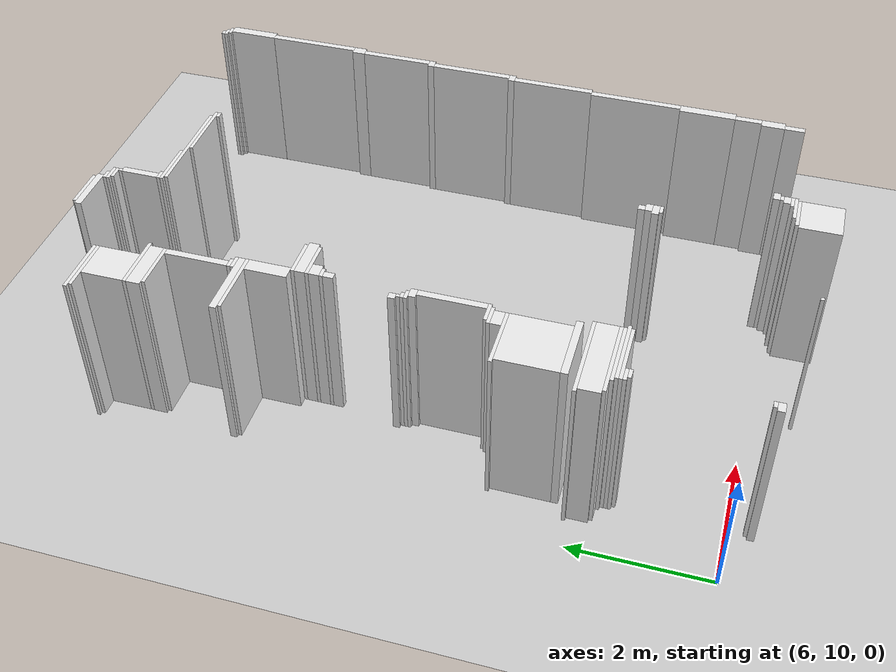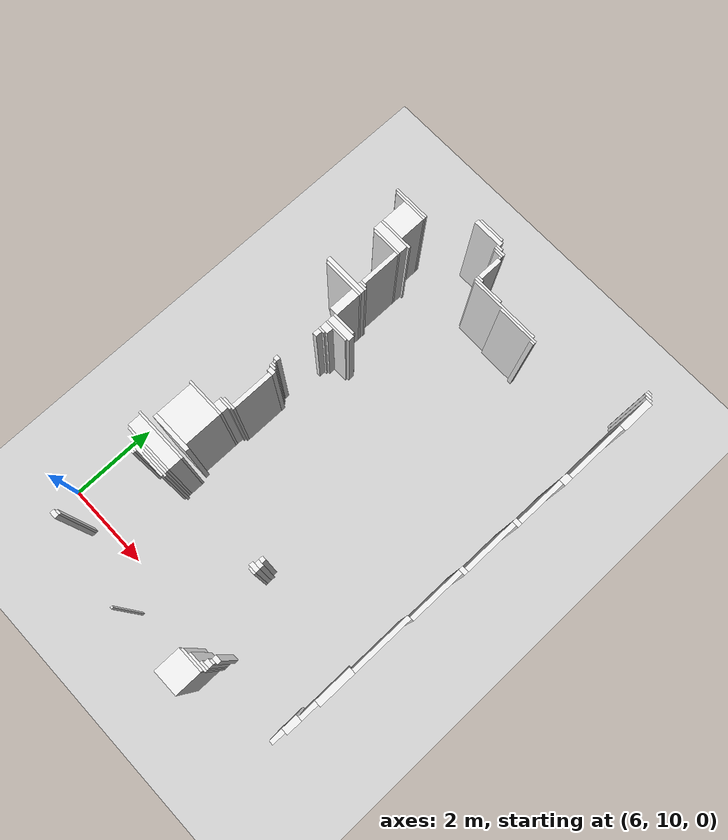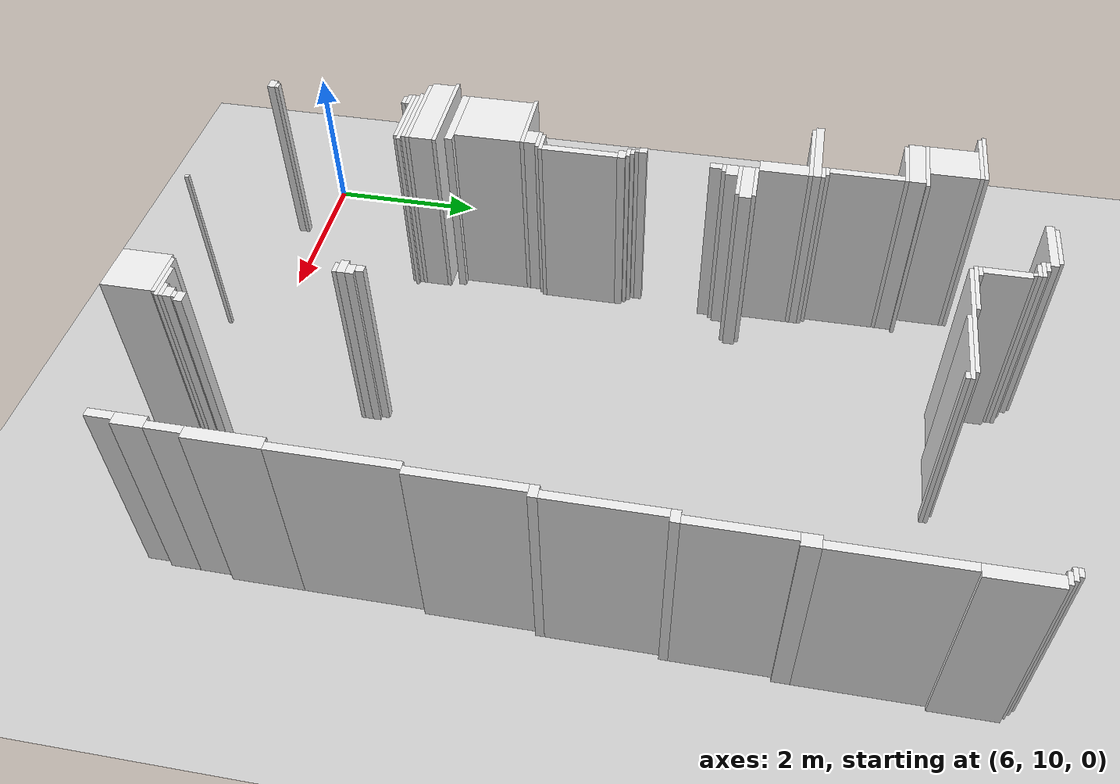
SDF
<sdf version="1.7">
 <world name="occupancy_map_world">
  <model name="ground_plane">
   <static>true</static>
   <link name="link">
    <collision name="collision">
     <geometry><plane><normal>0 0 1</normal><size>32.46 49.62000000000001</size></plane></geometry>
    </collision>
    <visual name="visual">
     <geometry><plane><normal>0 0 1</normal><size>32.46 49.62000000000001</size></plane></geometry>
     <material>
      <script><uri>file://media/materials/scripts/gazebo.material</uri><name>Gazebo/Grey</name></script>
     </material>
    </visual>
   </link>
  </model>
  <model name="wall_18">
   <static>true</static>
   <pose>8.375000000000004 19.650000000000006 1.25 0 0 0.0</pose>
   <link name="link">
    <collision name="collision">
     <geometry><box><size>0.6000000000000001 0.05 2.5</size></box></geometry>
    </collision>
    <visual name="visual">
     <geometry><box><size>0.6000000000000001 0.05 2.5</size></box></geometry>
     <material>
      <script><uri>file://media/materials/scripts/gazebo.material</uri><name>Gazebo/White</name></script>
     </material>
    </visual>
   </link>
  </model>
  <model name="wall_21">
   <static>true</static>
   <pose>8.375000000000004 19.575000000000003 1.25 0 0 0.0</pose>
   <link name="link">
    <collision name="collision">
     <geometry><box><size>0.7000000000000001 0.1 2.5</size></box></geometry>
    </collision>
    <visual name="visual">
     <geometry><box><size>0.7000000000000001 0.1 2.5</size></box></geometry>
     <material>
      <script><uri>file://media/materials/scripts/gazebo.material</uri><name>Gazebo/White</name></script>
     </material>
    </visual>
   </link>
  </model>
  <model name="wall_26">
   <static>true</static>
   <pose>8.750000000000004 19.5 1.25 0 0 0.0</pose>
   <link name="link">
    <collision name="collision">
     <geometry><box><size>0.15000000000000002 0.05 2.5</size></box></geometry>
    </collision>
    <visual name="visual">
     <geometry><box><size>0.15000000000000002 0.05 2.5</size></box></geometry>
     <material>
      <script><uri>file://media/materials/scripts/gazebo.material</uri><name>Gazebo/White</name></script>
     </material>
    </visual>
   </link>
  </model>
  <model name="wall_28">
   <static>true</static>
   <pose>8.800000000000004 19.450000000000003 1.25 0 0 0.0</pose>
   <link name="link">
    <collision name="collision"><geometry><box><size>0.25 0.05 2.5</size></box></geometry></collision>
    <visual name="visual">
     <geometry><box><size>0.25 0.05 2.5</size></box></geometry>
     <material>
      <script><uri>file://media/materials/scripts/gazebo.material</uri><name>Gazebo/White</name></script>
     </material>
    </visual>
   </link>
  </model>
  <model name="wall_29">
   <static>true</static>
   <pose>12.825000000000003 19.450000000000003 1.25 0 0 0.0</pose>
   <link name="link">
    <collision name="collision"><geometry><box><size>0.1 0.05 2.5</size></box></geometry></collision>
    <visual name="visual">
     <geometry><box><size>0.1 0.05 2.5</size></box></geometry>
     <material>
      <script><uri>file://media/materials/scripts/gazebo.material</uri><name>Gazebo/White</name></script>
     </material>
    </visual>
   </link>
  </model>
  <model name="wall_30">
   <static>true</static>
   <pose>12.825000000000003 15.149999999999999 1.25 0 0 0.0</pose>
   <link name="link">
    <collision name="collision"><geometry><box><size>0.1 1.25 2.5</size></box></geometry></collision>
    <visual name="visual">
     <geometry><box><size>0.1 1.25 2.5</size></box></geometry>
     <material>
      <script><uri>file://media/materials/scripts/gazebo.material</uri><name>Gazebo/White</name></script>
     </material>
    </visual>
   </link>
  </model>
  <model name="wall_32">
   <static>true</static>
   <pose>8.825000000000003 19.400000000000006 1.25 0 0 0.0</pose>
   <link name="link">
    <collision name="collision"><geometry><box><size>0.2 0.05 2.5</size></box></geometry></collision>
    <visual name="visual">
     <geometry><box><size>0.2 0.05 2.5</size></box></geometry>
     <material>
      <script><uri>file://media/materials/scripts/gazebo.material</uri><name>Gazebo/White</name></script>
     </material>
    </visual>
   </link>
  </model>
  <model name="wall_33">
   <static>true</static>
   <pose>12.850000000000001 19.400000000000006 1.25 0 0 0.0</pose>
   <link name="link">
    <collision name="collision">
     <geometry><box><size>0.15000000000000002 0.05 2.5</size></box></geometry>
    </collision>
    <visual name="visual">
     <geometry><box><size>0.15000000000000002 0.05 2.5</size></box></geometry>
     <material>
      <script><uri>file://media/materials/scripts/gazebo.material</uri><name>Gazebo/White</name></script>
     </material>
    </visual>
   </link>
  </model>
  <model name="wall_34">
   <static>true</static>
   <pose>12.850000000000001 15.825000000000003 1.25 0 0 0.0</pose>
   <link name="link">
    <collision name="collision">
     <geometry><box><size>0.15000000000000002 0.1 2.5</size></box></geometry>
    </collision>
    <visual name="visual">
     <geometry><box><size>0.15000000000000002 0.1 2.5</size></box></geometry>
     <material>
      <script><uri>file://media/materials/scripts/gazebo.material</uri><name>Gazebo/White</name></script>
     </material>
    </visual>
   </link>
  </model>
  <model name="wall_36">
   <static>true</static>
   <pose>8.900000000000002 19.35 1.25 0 0 0.0</pose>
   <link name="link">
    <collision name="collision"><geometry><box><size>0.05 0.05 2.5</size></box></geometry></collision>
    <visual name="visual">
     <geometry><box><size>0.05 0.05 2.5</size></box></geometry>
     <material>
      <script><uri>file://media/materials/scripts/gazebo.material</uri><name>Gazebo/White</name></script>
     </material>
    </visual>
   </link>
  </model>
  <model name="wall_37">
   <static>true</static>
   <pose>8.900000000000002 9.350000000000001 1.25 0 0 0.0</pose>
   <link name="link">
    <collision name="collision"><geometry><box><size>0.05 0.05 2.5</size></box></geometry></collision>
    <visual name="visual">
     <geometry><box><size>0.05 0.05 2.5</size></box></geometry>
     <material>
      <script><uri>file://media/materials/scripts/gazebo.material</uri><name>Gazebo/White</name></script>
     </material>
    </visual>
   </link>
  </model>
  <model name="wall_38">
   <static>true</static>
   <pose>12.900000000000002 19.35 1.25 0 0 0.0</pose>
   <link name="link">
    <collision name="collision">
     <geometry><box><size>0.15000000000000002 0.05 2.5</size></box></geometry>
    </collision>
    <visual name="visual">
     <geometry><box><size>0.15000000000000002 0.05 2.5</size></box></geometry>
     <material>
      <script><uri>file://media/materials/scripts/gazebo.material</uri><name>Gazebo/White</name></script>
     </material>
    </visual>
   </link>
  </model>
  <model name="wall_39">
   <static>true</static>
   <pose>12.900000000000002 17.075000000000003 1.25 0 0 0.0</pose>
   <link name="link">
    <collision name="collision">
     <geometry><box><size>0.15000000000000002 0.2 2.5</size></box></geometry>
    </collision>
    <visual name="visual">
     <geometry><box><size>0.15000000000000002 0.2 2.5</size></box></geometry>
     <material>
      <script><uri>file://media/materials/scripts/gazebo.material</uri><name>Gazebo/White</name></script>
     </material>
    </visual>
   </link>
  </model>
  <model name="wall_41">
   <static>true</static>
   <pose>8.925000000000004 19.050000000000004 1.25 0 0 0.0</pose>
   <link name="link">
    <collision name="collision"><geometry><box><size>0.1 0.55 2.5</size></box></geometry></collision>
    <visual name="visual">
     <geometry><box><size>0.1 0.55 2.5</size></box></geometry>
     <material>
      <script><uri>file://media/materials/scripts/gazebo.material</uri><name>Gazebo/White</name></script>
     </material>
    </visual>
   </link>
  </model>
  <model name="wall_42">
   <static>true</static>
   <pose>12.950000000000003 18.950000000000003 1.25 0 0 0.0</pose>
   <link name="link">
    <collision name="collision">
     <geometry><box><size>0.15000000000000002 0.75 2.5</size></box></geometry>
    </collision>
    <visual name="visual">
     <geometry><box><size>0.15000000000000002 0.75 2.5</size></box></geometry>
     <material>
      <script><uri>file://media/materials/scripts/gazebo.material</uri><name>Gazebo/White</name></script>
     </material>
    </visual>
   </link>
  </model>
  <model name="wall_63">
   <static>true</static>
   <pose>6.850000000000001 18.900000000000006 1.25 0 0 0.0</pose>
   <link name="link">
    <collision name="collision">
     <geometry><box><size>0.8500000000000001 0.05 2.5</size></box></geometry>
    </collision>
    <visual name="visual">
     <geometry><box><size>0.8500000000000001 0.05 2.5</size></box></geometry>
     <material>
      <script><uri>file://media/materials/scripts/gazebo.material</uri><name>Gazebo/White</name></script>
     </material>
    </visual>
   </link>
  </model>
  <model name="wall_65">
   <static>true</static>
   <pose>6.8750000000000036 18.85 1.25 0 0 0.0</pose>
   <link name="link">
    <collision name="collision"><geometry><box><size>0.8 0.05 2.5</size></box></geometry></collision>
    <visual name="visual">
     <geometry><box><size>0.8 0.05 2.5</size></box></geometry>
     <material>
      <script><uri>file://media/materials/scripts/gazebo.material</uri><name>Gazebo/White</name></script>
     </material>
    </visual>
   </link>
  </model>
  <model name="wall_67">
   <static>true</static>
   <pose>7.0000000000000036 18.525000000000006 1.25 0 0 0.0</pose>
   <link name="link">
    <collision name="collision">
     <geometry><box><size>0.55 0.6000000000000001 2.5</size></box></geometry>
    </collision>
    <visual name="visual">
     <geometry><box><size>0.55 0.6000000000000001 2.5</size></box></geometry>
     <material>
      <script><uri>file://media/materials/scripts/gazebo.material</uri><name>Gazebo/White</name></script>
     </material>
    </visual>
   </link>
  </model>
  <model name="wall_69">
   <static>true</static>
   <pose>8.950000000000003 18.75 1.25 0 0 0.0</pose>
   <link name="link">
    <collision name="collision">
     <geometry><box><size>0.15000000000000002 0.05 2.5</size></box></geometry>
    </collision>
    <visual name="visual">
     <geometry><box><size>0.15000000000000002 0.05 2.5</size></box></geometry>
     <material>
      <script><uri>file://media/materials/scripts/gazebo.material</uri><name>Gazebo/White</name></script>
     </material>
    </visual>
   </link>
  </model>
  <model name="wall_72">
   <static>true</static>
   <pose>9.225000000000001 18.700000000000003 1.25 0 0 0.0</pose>
   <link name="link">
    <collision name="collision">
     <geometry><box><size>0.7000000000000001 0.05 2.5</size></box></geometry>
    </collision>
    <visual name="visual">
     <geometry><box><size>0.7000000000000001 0.05 2.5</size></box></geometry>
     <material>
      <script><uri>file://media/materials/scripts/gazebo.material</uri><name>Gazebo/White</name></script>
     </material>
    </visual>
   </link>
  </model>
  <model name="wall_73">
   <static>true</static>
   <pose>9.725000000000001 18.650000000000006 1.25 0 0 0.0</pose>
   <link name="link">
    <collision name="collision"><geometry><box><size>1.6 0.05 2.5</size></box></geometry></collision>
    <visual name="visual">
     <geometry><box><size>1.6 0.05 2.5</size></box></geometry>
     <material>
      <script><uri>file://media/materials/scripts/gazebo.material</uri><name>Gazebo/White</name></script>
     </material>
    </visual>
   </link>
  </model>
  <model name="wall_74">
   <static>true</static>
   <pose>10.150000000000002 18.6 1.25 0 0 0.0</pose>
   <link name="link">
    <collision name="collision">
     <geometry><box><size>0.9500000000000001 0.05 2.5</size></box></geometry>
    </collision>
    <visual name="visual">
     <geometry><box><size>0.9500000000000001 0.05 2.5</size></box></geometry>
     <material>
      <script><uri>file://media/materials/scripts/gazebo.material</uri><name>Gazebo/White</name></script>
     </material>
    </visual>
   </link>
  </model>
  <model name="wall_76">
   <static>true</static>
   <pose>10.575000000000003 18.550000000000004 1.25 0 0 0.0</pose>
   <link name="link">
    <collision name="collision"><geometry><box><size>0.1 0.05 2.5</size></box></geometry></collision>
    <visual name="visual">
     <geometry><box><size>0.1 0.05 2.5</size></box></geometry>
     <material>
      <script><uri>file://media/materials/scripts/gazebo.material</uri><name>Gazebo/White</name></script>
     </material>
    </visual>
   </link>
  </model>
  <model name="wall_78">
   <static>true</static>
   <pose>12.925000000000004 17.875 1.25 0 0 0.0</pose>
   <link name="link">
    <collision name="collision">
     <geometry><box><size>0.1 1.4000000000000001 2.5</size></box></geometry>
    </collision>
    <visual name="visual">
     <geometry><box><size>0.1 1.4000000000000001 2.5</size></box></geometry>
     <material>
      <script><uri>file://media/materials/scripts/gazebo.material</uri><name>Gazebo/White</name></script>
     </material>
    </visual>
   </link>
  </model>
  <model name="wall_85">
   <static>true</static>
   <pose>7.1250000000000036 18.200000000000003 1.25 0 0 0.0</pose>
   <link name="link">
    <collision name="collision"><geometry><box><size>0.8 0.05 2.5</size></box></geometry></collision>
    <visual name="visual">
     <geometry><box><size>0.8 0.05 2.5</size></box></geometry>
     <material>
      <script><uri>file://media/materials/scripts/gazebo.material</uri><name>Gazebo/White</name></script>
     </material>
    </visual>
   </link>
  </model>
  <model name="wall_86">
   <static>true</static>
   <pose>7.100000000000001 18.075000000000003 1.25 0 0 0.0</pose>
   <link name="link">
    <collision name="collision"><geometry><box><size>0.75 0.2 2.5</size></box></geometry></collision>
    <visual name="visual">
     <geometry><box><size>0.75 0.2 2.5</size></box></geometry>
     <material>
      <script><uri>file://media/materials/scripts/gazebo.material</uri><name>Gazebo/White</name></script>
     </material>
    </visual>
   </link>
  </model>
  <model name="wall_87">
   <static>true</static>
   <pose>7.1250000000000036 17.950000000000003 1.25 0 0 0.0</pose>
   <link name="link">
    <collision name="collision">
     <geometry><box><size>0.7000000000000001 0.05 2.5</size></box></geometry>
    </collision>
    <visual name="visual">
     <geometry><box><size>0.7000000000000001 0.05 2.5</size></box></geometry>
     <material>
      <script><uri>file://media/materials/scripts/gazebo.material</uri><name>Gazebo/White</name></script>
     </material>
    </visual>
   </link>
  </model>
  <model name="wall_89">
   <static>true</static>
   <pose>7.425000000000004 17.475 1.25 0 0 0.0</pose>
   <link name="link">
    <collision name="collision"><geometry><box><size>0.1 0.9 2.5</size></box></geometry></collision>
    <visual name="visual">
     <geometry><box><size>0.1 0.9 2.5</size></box></geometry>
     <material>
      <script><uri>file://media/materials/scripts/gazebo.material</uri><name>Gazebo/White</name></script>
     </material>
    </visual>
   </link>
  </model>
  <model name="wall_90">
   <static>true</static>
   <pose>7.425000000000004 14.725000000000001 1.25 0 0 0.0</pose>
   <link name="link">
    <collision name="collision"><geometry><box><size>0.1 0.1 2.5</size></box></geometry></collision>
    <visual name="visual">
     <geometry><box><size>0.1 0.1 2.5</size></box></geometry>
     <material>
      <script><uri>file://media/materials/scripts/gazebo.material</uri><name>Gazebo/White</name></script>
     </material>
    </visual>
   </link>
  </model>
  <model name="wall_107">
   <static>true</static>
   <pose>7.450000000000003 17.0 1.25 0 0 0.0</pose>
   <link name="link">
    <collision name="collision">
     <geometry><box><size>0.15000000000000002 0.05 2.5</size></box></geometry>
    </collision>
    <visual name="visual">
     <geometry><box><size>0.15000000000000002 0.05 2.5</size></box></geometry>
     <material>
      <script><uri>file://media/materials/scripts/gazebo.material</uri><name>Gazebo/White</name></script>
     </material>
    </visual>
   </link>
  </model>
  <model name="wall_108">
   <static>true</static>
   <pose>7.475000000000001 16.950000000000003 1.25 0 0 0.0</pose>
   <link name="link">
    <collision name="collision"><geometry><box><size>0.2 0.05 2.5</size></box></geometry></collision>
    <visual name="visual">
     <geometry><box><size>0.2 0.05 2.5</size></box></geometry>
     <material>
      <script><uri>file://media/materials/scripts/gazebo.material</uri><name>Gazebo/White</name></script>
     </material>
    </visual>
   </link>
  </model>
  <model name="wall_109">
   <static>true</static>
   <pose>7.475000000000001 16.475 1.25 0 0 0.0</pose>
   <link name="link">
    <collision name="collision">
     <geometry><box><size>0.2 0.6000000000000001 2.5</size></box></geometry>
    </collision>
    <visual name="visual">
     <geometry><box><size>0.2 0.6000000000000001 2.5</size></box></geometry>
     <material>
      <script><uri>file://media/materials/scripts/gazebo.material</uri><name>Gazebo/White</name></script>
     </material>
    </visual>
   </link>
  </model>
  <model name="wall_110">
   <static>true</static>
   <pose>12.875000000000004 16.425000000000004 1.25 0 0 0.0</pose>
   <link name="link">
    <collision name="collision"><geometry><box><size>0.1 1.1 2.5</size></box></geometry></collision>
    <visual name="visual">
     <geometry><box><size>0.1 1.1 2.5</size></box></geometry>
     <material>
      <script><uri>file://media/materials/scripts/gazebo.material</uri><name>Gazebo/White</name></script>
     </material>
    </visual>
   </link>
  </model>
  <model name="wall_111">
   <static>true</static>
   <pose>7.075000000000003 16.875 1.25 0 0 0.0</pose>
   <link name="link">
    <collision name="collision"><geometry><box><size>1.0 0.1 2.5</size></box></geometry></collision>
    <visual name="visual">
     <geometry><box><size>1.0 0.1 2.5</size></box></geometry>
     <material>
      <script><uri>file://media/materials/scripts/gazebo.material</uri><name>Gazebo/White</name></script>
     </material>
    </visual>
   </link>
  </model>
  <model name="wall_113">
   <static>true</static>
   <pose>7.100000000000001 16.800000000000004 1.25 0 0 0.0</pose>
   <link name="link">
    <collision name="collision">
     <geometry><box><size>0.9500000000000001 0.05 2.5</size></box></geometry>
    </collision>
    <visual name="visual">
     <geometry><box><size>0.9500000000000001 0.05 2.5</size></box></geometry>
     <material>
      <script><uri>file://media/materials/scripts/gazebo.material</uri><name>Gazebo/White</name></script>
     </material>
    </visual>
   </link>
  </model>
  <model name="wall_127">
   <static>true</static>
   <pose>7.800000000000004 16.15 1.25 0 0 0.0</pose>
   <link name="link">
    <collision name="collision"><geometry><box><size>0.55 0.05 2.5</size></box></geometry></collision>
    <visual name="visual">
     <geometry><box><size>0.55 0.05 2.5</size></box></geometry>
     <material>
      <script><uri>file://media/materials/scripts/gazebo.material</uri><name>Gazebo/White</name></script>
     </material>
    </visual>
   </link>
  </model>
  <model name="wall_128">
   <static>true</static>
   <pose>7.800000000000004 15.950000000000003 1.25 0 0 0.0</pose>
   <link name="link">
    <collision name="collision"><geometry><box><size>0.55 0.05 2.5</size></box></geometry></collision>
    <visual name="visual">
     <geometry><box><size>0.55 0.05 2.5</size></box></geometry>
     <material>
      <script><uri>file://media/materials/scripts/gazebo.material</uri><name>Gazebo/White</name></script>
     </material>
    </visual>
   </link>
  </model>
  <model name="wall_129">
   <static>true</static>
   <pose>7.825000000000003 16.050000000000004 1.25 0 0 0.0</pose>
   <link name="link">
    <collision name="collision">
     <geometry><box><size>0.6000000000000001 0.15000000000000002 2.5</size></box></geometry>
    </collision>
    <visual name="visual">
     <geometry><box><size>0.6000000000000001 0.15000000000000002 2.5</size></box></geometry>
     <material>
      <script><uri>file://media/materials/scripts/gazebo.material</uri><name>Gazebo/White</name></script>
     </material>
    </visual>
   </link>
  </model>
  <model name="wall_131">
   <static>true</static>
   <pose>7.6250000000000036 15.850000000000001 1.25 0 0 0.0</pose>
   <link name="link">
    <collision name="collision">
     <geometry><box><size>0.2 0.15000000000000002 2.5</size></box></geometry>
    </collision>
    <visual name="visual">
     <geometry><box><size>0.2 0.15000000000000002 2.5</size></box></geometry>
     <material>
      <script><uri>file://media/materials/scripts/gazebo.material</uri><name>Gazebo/White</name></script>
     </material>
    </visual>
   </link>
  </model>
  <model name="wall_132">
   <static>true</static>
   <pose>7.600000000000001 15.75 1.25 0 0 0.0</pose>
   <link name="link">
    <collision name="collision">
     <geometry><box><size>0.15000000000000002 0.05 2.5</size></box></geometry>
    </collision>
    <visual name="visual">
     <geometry><box><size>0.15000000000000002 0.05 2.5</size></box></geometry>
     <material>
      <script><uri>file://media/materials/scripts/gazebo.material</uri><name>Gazebo/White</name></script>
     </material>
    </visual>
   </link>
  </model>
  <model name="wall_134">
   <static>true</static>
   <pose>7.575000000000003 15.649999999999999 1.25 0 0 0.0</pose>
   <link name="link">
    <collision name="collision">
     <geometry><box><size>0.1 0.15000000000000002 2.5</size></box></geometry>
    </collision>
    <visual name="visual">
     <geometry><box><size>0.1 0.15000000000000002 2.5</size></box></geometry>
     <material>
      <script><uri>file://media/materials/scripts/gazebo.material</uri><name>Gazebo/White</name></script>
     </material>
    </visual>
   </link>
  </model>
  <model name="wall_135">
   <static>true</static>
   <pose>7.575000000000003 13.950000000000003 1.25 0 0 0.0</pose>
   <link name="link">
    <collision name="collision">
     <geometry><box><size>0.1 0.9500000000000001 2.5</size></box></geometry>
    </collision>
    <visual name="visual">
     <geometry><box><size>0.1 0.9500000000000001 2.5</size></box></geometry>
     <material>
      <script><uri>file://media/materials/scripts/gazebo.material</uri><name>Gazebo/White</name></script>
     </material>
    </visual>
   </link>
  </model>
  <model name="wall_161">
   <static>true</static>
   <pose>7.450000000000003 14.649999999999999 1.25 0 0 0.0</pose>
   <link name="link">
    <collision name="collision"><geometry><box><size>0.05 0.05 2.5</size></box></geometry></collision>
    <visual name="visual">
     <geometry><box><size>0.05 0.05 2.5</size></box></geometry>
     <material>
      <script><uri>file://media/materials/scripts/gazebo.material</uri><name>Gazebo/White</name></script>
     </material>
    </visual>
   </link>
  </model>
  <model name="wall_164">
   <static>true</static>
   <pose>7.475000000000001 14.600000000000001 1.25 0 0 0.0</pose>
   <link name="link">
    <collision name="collision"><geometry><box><size>0.1 0.05 2.5</size></box></geometry></collision>
    <visual name="visual">
     <geometry><box><size>0.1 0.05 2.5</size></box></geometry>
     <material>
      <script><uri>file://media/materials/scripts/gazebo.material</uri><name>Gazebo/White</name></script>
     </material>
    </visual>
   </link>
  </model>
  <model name="wall_166">
   <static>true</static>
   <pose>7.5000000000000036 14.550000000000004 1.25 0 0 0.0</pose>
   <link name="link">
    <collision name="collision">
     <geometry><box><size>0.15000000000000002 0.05 2.5</size></box></geometry>
    </collision>
    <visual name="visual">
     <geometry><box><size>0.15000000000000002 0.05 2.5</size></box></geometry>
     <material>
      <script><uri>file://media/materials/scripts/gazebo.material</uri><name>Gazebo/White</name></script>
     </material>
    </visual>
   </link>
  </model>
  <model name="wall_167">
   <static>true</static>
   <pose>7.550000000000004 14.475000000000001 1.25 0 0 0.0</pose>
   <link name="link">
    <collision name="collision">
     <geometry><box><size>0.15000000000000002 0.1 2.5</size></box></geometry>
    </collision>
    <visual name="visual">
     <geometry><box><size>0.15000000000000002 0.1 2.5</size></box></geometry>
     <material>
      <script><uri>file://media/materials/scripts/gazebo.material</uri><name>Gazebo/White</name></script>
     </material>
    </visual>
   </link>
  </model>
  <model name="wall_168">
   <static>true</static>
   <pose>12.800000000000004 14.475000000000001 1.25 0 0 0.0</pose>
   <link name="link">
    <collision name="collision">
     <geometry><box><size>0.15000000000000002 0.1 2.5</size></box></geometry>
    </collision>
    <visual name="visual">
     <geometry><box><size>0.15000000000000002 0.1 2.5</size></box></geometry>
     <material>
      <script><uri>file://media/materials/scripts/gazebo.material</uri><name>Gazebo/White</name></script>
     </material>
    </visual>
   </link>
  </model>
  <model name="wall_170">
   <static>true</static>
   <pose>12.775000000000002 13.800000000000004 1.25 0 0 0.0</pose>
   <link name="link">
    <collision name="collision"><geometry><box><size>0.1 1.25 2.5</size></box></geometry></collision>
    <visual name="visual">
     <geometry><box><size>0.1 1.25 2.5</size></box></geometry>
     <material>
      <script><uri>file://media/materials/scripts/gazebo.material</uri><name>Gazebo/White</name></script>
     </material>
    </visual>
   </link>
  </model>
  <model name="wall_182">
   <static>true</static>
   <pose>7.475000000000001 13.450000000000003 1.25 0 0 0.0</pose>
   <link name="link">
    <collision name="collision">
     <geometry><box><size>0.30000000000000004 0.05 2.5</size></box></geometry>
    </collision>
    <visual name="visual">
     <geometry><box><size>0.30000000000000004 0.05 2.5</size></box></geometry>
     <material>
      <script><uri>file://media/materials/scripts/gazebo.material</uri><name>Gazebo/White</name></script>
     </material>
    </visual>
   </link>
  </model>
  <model name="wall_185">
   <static>true</static>
   <pose>7.425000000000004 13.399999999999999 1.25 0 0 0.0</pose>
   <link name="link">
    <collision name="collision">
     <geometry><box><size>0.30000000000000004 0.05 2.5</size></box></geometry>
    </collision>
    <visual name="visual">
     <geometry><box><size>0.30000000000000004 0.05 2.5</size></box></geometry>
     <material>
      <script><uri>file://media/materials/scripts/gazebo.material</uri><name>Gazebo/White</name></script>
     </material>
    </visual>
   </link>
  </model>
  <model name="wall_187">
   <static>true</static>
   <pose>7.400000000000002 13.300000000000004 1.25 0 0 0.0</pose>
   <link name="link">
    <collision name="collision">
     <geometry><box><size>0.25 0.15000000000000002 2.5</size></box></geometry>
    </collision>
    <visual name="visual">
     <geometry><box><size>0.25 0.15000000000000002 2.5</size></box></geometry>
     <material>
      <script><uri>file://media/materials/scripts/gazebo.material</uri><name>Gazebo/White</name></script>
     </material>
    </visual>
   </link>
  </model>
  <model name="wall_189">
   <static>true</static>
   <pose>7.075000000000003 13.200000000000003 1.25 0 0 0.0</pose>
   <link name="link">
    <collision name="collision"><geometry><box><size>0.9 0.05 2.5</size></box></geometry></collision>
    <visual name="visual">
     <geometry><box><size>0.9 0.05 2.5</size></box></geometry>
     <material>
      <script><uri>file://media/materials/scripts/gazebo.material</uri><name>Gazebo/White</name></script>
     </material>
    </visual>
   </link>
  </model>
  <model name="wall_192">
   <static>true</static>
   <pose>7.100000000000001 12.75 1.25 0 0 0.0</pose>
   <link name="link">
    <collision name="collision">
     <geometry><box><size>0.8500000000000001 0.8500000000000001 2.5</size></box></geometry>
    </collision>
    <visual name="visual">
     <geometry><box><size>0.8500000000000001 0.8500000000000001 2.5</size></box></geometry>
     <material>
      <script><uri>file://media/materials/scripts/gazebo.material</uri><name>Gazebo/White</name></script>
     </material>
    </visual>
   </link>
  </model>
  <model name="wall_193">
   <static>true</static>
   <pose>12.725000000000001 12.475000000000001 1.25 0 0 0.0</pose>
   <link name="link">
    <collision name="collision">
     <geometry><box><size>0.1 1.4000000000000001 2.5</size></box></geometry>
    </collision>
    <visual name="visual">
     <geometry><box><size>0.1 1.4000000000000001 2.5</size></box></geometry>
     <material>
      <script><uri>file://media/materials/scripts/gazebo.material</uri><name>Gazebo/White</name></script>
     </material>
    </visual>
   </link>
  </model>
  <model name="wall_204">
   <static>true</static>
   <pose>7.150000000000002 12.274999999999999 1.25 0 0 0.0</pose>
   <link name="link">
    <collision name="collision">
     <geometry><box><size>0.9500000000000001 0.1 2.5</size></box></geometry>
    </collision>
    <visual name="visual">
     <geometry><box><size>0.9500000000000001 0.1 2.5</size></box></geometry>
     <material>
      <script><uri>file://media/materials/scripts/gazebo.material</uri><name>Gazebo/White</name></script>
     </material>
    </visual>
   </link>
  </model>
  <model name="wall_212">
   <static>true</static>
   <pose>7.050000000000004 12.100000000000001 1.25 0 0 0.0</pose>
   <link name="link">
    <collision name="collision"><geometry><box><size>1.25 0.05 2.5</size></box></geometry></collision>
    <visual name="visual">
     <geometry><box><size>1.25 0.05 2.5</size></box></geometry>
     <material>
      <script><uri>file://media/materials/scripts/gazebo.material</uri><name>Gazebo/White</name></script>
     </material>
    </visual>
   </link>
  </model>
  <model name="wall_215">
   <static>true</static>
   <pose>7.075000000000003 11.925000000000004 1.25 0 0 0.0</pose>
   <link name="link">
    <collision name="collision">
     <geometry><box><size>1.2000000000000002 0.30000000000000004 2.5</size></box></geometry>
    </collision>
    <visual name="visual">
     <geometry><box><size>1.2000000000000002 0.30000000000000004 2.5</size></box></geometry>
     <material>
      <script><uri>file://media/materials/scripts/gazebo.material</uri><name>Gazebo/White</name></script>
     </material>
    </visual>
   </link>
  </model>
  <model name="wall_221">
   <static>true</static>
   <pose>10.125000000000004 11.925000000000004 1.25 0 0 0.0</pose>
   <link name="link">
    <collision name="collision"><geometry><box><size>0.1 0.1 2.5</size></box></geometry></collision>
    <visual name="visual">
     <geometry><box><size>0.1 0.1 2.5</size></box></geometry>
     <material>
      <script><uri>file://media/materials/scripts/gazebo.material</uri><name>Gazebo/White</name></script>
     </material>
    </visual>
   </link>
  </model>
  <model name="wall_224">
   <static>true</static>
   <pose>10.150000000000002 11.825000000000003 1.25 0 0 0.0</pose>
   <link name="link">
    <collision name="collision">
     <geometry><box><size>0.15000000000000002 0.1 2.5</size></box></geometry>
    </collision>
    <visual name="visual">
     <geometry><box><size>0.15000000000000002 0.1 2.5</size></box></geometry>
     <material>
      <script><uri>file://media/materials/scripts/gazebo.material</uri><name>Gazebo/White</name></script>
     </material>
    </visual>
   </link>
  </model>
  <model name="wall_225">
   <static>true</static>
   <pose>10.150000000000002 11.649999999999999 1.25 0 0 0.0</pose>
   <link name="link">
    <collision name="collision">
     <geometry><box><size>0.15000000000000002 0.05 2.5</size></box></geometry>
    </collision>
    <visual name="visual">
     <geometry><box><size>0.15000000000000002 0.05 2.5</size></box></geometry>
     <material>
      <script><uri>file://media/materials/scripts/gazebo.material</uri><name>Gazebo/White</name></script>
     </material>
    </visual>
   </link>
  </model>
  <model name="wall_227">
   <static>true</static>
   <pose>7.100000000000001 11.75 1.25 0 0 0.0</pose>
   <link name="link">
    <collision name="collision">
     <geometry><box><size>1.1500000000000001 0.05 2.5</size></box></geometry>
    </collision>
    <visual name="visual">
     <geometry><box><size>1.1500000000000001 0.05 2.5</size></box></geometry>
     <material>
      <script><uri>file://media/materials/scripts/gazebo.material</uri><name>Gazebo/White</name></script>
     </material>
    </visual>
   </link>
  </model>
  <model name="wall_228">
   <static>true</static>
   <pose>10.125000000000004 11.725000000000001 1.25 0 0 0.0</pose>
   <link name="link">
    <collision name="collision"><geometry><box><size>0.2 0.1 2.5</size></box></geometry></collision>
    <visual name="visual">
     <geometry><box><size>0.2 0.1 2.5</size></box></geometry>
     <material>
      <script><uri>file://media/materials/scripts/gazebo.material</uri><name>Gazebo/White</name></script>
     </material>
    </visual>
   </link>
  </model>
  <model name="wall_229">
   <static>true</static>
   <pose>12.700000000000003 11.350000000000001 1.25 0 0 0.0</pose>
   <link name="link">
    <collision name="collision">
     <geometry><box><size>0.15000000000000002 0.8500000000000001 2.5</size></box></geometry>
    </collision>
    <visual name="visual">
     <geometry><box><size>0.15000000000000002 0.8500000000000001 2.5</size></box></geometry>
     <material>
      <script><uri>file://media/materials/scripts/gazebo.material</uri><name>Gazebo/White</name></script>
     </material>
    </visual>
   </link>
  </model>
  <model name="wall_232">
   <static>true</static>
   <pose>7.200000000000003 11.700000000000003 1.25 0 0 0.0</pose>
   <link name="link">
    <collision name="collision">
     <geometry><box><size>0.9500000000000001 0.05 2.5</size></box></geometry>
    </collision>
    <visual name="visual">
     <geometry><box><size>0.9500000000000001 0.05 2.5</size></box></geometry>
     <material>
      <script><uri>file://media/materials/scripts/gazebo.material</uri><name>Gazebo/White</name></script>
     </material>
    </visual>
   </link>
  </model>
  <model name="wall_236">
   <static>true</static>
   <pose>7.2500000000000036 11.649999999999999 1.25 0 0 0.0</pose>
   <link name="link">
    <collision name="collision">
     <geometry><box><size>0.9500000000000001 0.05 2.5</size></box></geometry>
    </collision>
    <visual name="visual">
     <geometry><box><size>0.9500000000000001 0.05 2.5</size></box></geometry>
     <material>
      <script><uri>file://media/materials/scripts/gazebo.material</uri><name>Gazebo/White</name></script>
     </material>
    </visual>
   </link>
  </model>
  <model name="wall_238">
   <static>true</static>
   <pose>7.225000000000001 11.600000000000001 1.25 0 0 0.0</pose>
   <link name="link">
    <collision name="collision"><geometry><box><size>0.9 0.05 2.5</size></box></geometry></collision>
    <visual name="visual">
     <geometry><box><size>0.9 0.05 2.5</size></box></geometry>
     <material>
      <script><uri>file://media/materials/scripts/gazebo.material</uri><name>Gazebo/White</name></script>
     </material>
    </visual>
   </link>
  </model>
  <model name="wall_239">
   <static>true</static>
   <pose>6.8750000000000036 11.550000000000004 1.25 0 0 0.0</pose>
   <link name="link">
    <collision name="collision"><geometry><box><size>0.2 0.05 2.5</size></box></geometry></collision>
    <visual name="visual">
     <geometry><box><size>0.2 0.05 2.5</size></box></geometry>
     <material>
      <script><uri>file://media/materials/scripts/gazebo.material</uri><name>Gazebo/White</name></script>
     </material>
    </visual>
   </link>
  </model>
  <model name="wall_240">
   <static>true</static>
   <pose>6.900000000000002 11.5 1.25 0 0 0.0</pose>
   <link name="link">
    <collision name="collision">
     <geometry><box><size>0.15000000000000002 0.05 2.5</size></box></geometry>
    </collision>
    <visual name="visual">
     <geometry><box><size>0.15000000000000002 0.05 2.5</size></box></geometry>
     <material>
      <script><uri>file://media/materials/scripts/gazebo.material</uri><name>Gazebo/White</name></script>
     </material>
    </visual>
   </link>
  </model>
  <model name="wall_243">
   <static>true</static>
   <pose>12.675000000000004 10.725000000000001 1.25 0 0 0.0</pose>
   <link name="link">
    <collision name="collision"><geometry><box><size>0.1 0.4 2.5</size></box></geometry></collision>
    <visual name="visual">
     <geometry><box><size>0.1 0.4 2.5</size></box></geometry>
     <material>
      <script><uri>file://media/materials/scripts/gazebo.material</uri><name>Gazebo/White</name></script>
     </material>
    </visual>
   </link>
  </model>
  <model name="wall_249">
   <static>true</static>
   <pose>12.650000000000002 10.350000000000001 1.25 0 0 0.0</pose>
   <link name="link">
    <collision name="collision">
     <geometry><box><size>0.15000000000000002 0.35000000000000003 2.5</size></box></geometry>
    </collision>
    <visual name="visual">
     <geometry><box><size>0.15000000000000002 0.35000000000000003 2.5</size></box></geometry>
     <material>
      <script><uri>file://media/materials/scripts/gazebo.material</uri><name>Gazebo/White</name></script>
     </material>
    </visual>
   </link>
  </model>
  <model name="wall_250">
   <static>true</static>
   <pose>10.900000000000002 10.125 1.25 0 0 0.0</pose>
   <link name="link">
    <collision name="collision">
     <geometry><box><size>0.15000000000000002 0.1 2.5</size></box></geometry>
    </collision>
    <visual name="visual">
     <geometry><box><size>0.15000000000000002 0.1 2.5</size></box></geometry>
     <material>
      <script><uri>file://media/materials/scripts/gazebo.material</uri><name>Gazebo/White</name></script>
     </material>
    </visual>
   </link>
  </model>
  <model name="wall_251">
   <static>true</static>
   <pose>12.625000000000004 10.025000000000002 1.25 0 0 0.0</pose>
   <link name="link">
    <collision name="collision">
     <geometry><box><size>0.1 0.30000000000000004 2.5</size></box></geometry>
    </collision>
    <visual name="visual">
     <geometry><box><size>0.1 0.30000000000000004 2.5</size></box></geometry>
     <material>
      <script><uri>file://media/materials/scripts/gazebo.material</uri><name>Gazebo/White</name></script>
     </material>
    </visual>
   </link>
  </model>
  <model name="wall_252">
   <static>true</static>
   <pose>10.875000000000004 10.05 1.25 0 0 0.0</pose>
   <link name="link">
    <collision name="collision"><geometry><box><size>0.1 0.05 2.5</size></box></geometry></collision>
    <visual name="visual">
     <geometry><box><size>0.1 0.05 2.5</size></box></geometry>
     <material>
      <script><uri>file://media/materials/scripts/gazebo.material</uri><name>Gazebo/White</name></script>
     </material>
    </visual>
   </link>
  </model>
  <model name="wall_253">
   <static>true</static>
   <pose>10.850000000000001 9.975000000000001 1.25 0 0 0.0</pose>
   <link name="link">
    <collision name="collision">
     <geometry><box><size>0.15000000000000002 0.1 2.5</size></box></geometry>
    </collision>
    <visual name="visual">
     <geometry><box><size>0.15000000000000002 0.1 2.5</size></box></geometry>
     <material>
      <script><uri>file://media/materials/scripts/gazebo.material</uri><name>Gazebo/White</name></script>
     </material>
    </visual>
   </link>
  </model>
  <model name="wall_255">
   <static>true</static>
   <pose>10.825000000000003 9.900000000000002 1.25 0 0 0.0</pose>
   <link name="link">
    <collision name="collision"><geometry><box><size>0.2 0.05 2.5</size></box></geometry></collision>
    <visual name="visual">
     <geometry><box><size>0.2 0.05 2.5</size></box></geometry>
     <material>
      <script><uri>file://media/materials/scripts/gazebo.material</uri><name>Gazebo/White</name></script>
     </material>
    </visual>
   </link>
  </model>
  <model name="wall_257">
   <static>true</static>
   <pose>10.700000000000003 9.850000000000001 1.25 0 0 0.0</pose>
   <link name="link">
    <collision name="collision"><geometry><box><size>0.45 0.05 2.5</size></box></geometry></collision>
    <visual name="visual">
     <geometry><box><size>0.45 0.05 2.5</size></box></geometry>
     <material>
      <script><uri>file://media/materials/scripts/gazebo.material</uri><name>Gazebo/White</name></script>
     </material>
    </visual>
   </link>
  </model>
  <model name="wall_260">
   <static>true</static>
   <pose>10.600000000000001 9.8 1.25 0 0 0.0</pose>
   <link name="link">
    <collision name="collision"><geometry><box><size>0.55 0.05 2.5</size></box></geometry></collision>
    <visual name="visual">
     <geometry><box><size>0.55 0.05 2.5</size></box></geometry>
     <material>
      <script><uri>file://media/materials/scripts/gazebo.material</uri><name>Gazebo/White</name></script>
     </material>
    </visual>
   </link>
  </model>
  <model name="wall_262">
   <static>true</static>
   <pose>6.8750000000000036 9.75 1.25 0 0 0.0</pose>
   <link name="link">
    <collision name="collision"><geometry><box><size>0.1 0.05 2.5</size></box></geometry></collision>
    <visual name="visual">
     <geometry><box><size>0.1 0.05 2.5</size></box></geometry>
     <material>
      <script><uri>file://media/materials/scripts/gazebo.material</uri><name>Gazebo/White</name></script>
     </material>
    </visual>
   </link>
  </model>
  <model name="wall_263">
   <static>true</static>
   <pose>10.575000000000003 9.475000000000001 1.25 0 0 0.0</pose>
   <link name="link">
    <collision name="collision">
     <geometry><box><size>0.6000000000000001 0.6000000000000001 2.5</size></box></geometry>
    </collision>
    <visual name="visual">
     <geometry><box><size>0.6000000000000001 0.6000000000000001 2.5</size></box></geometry>
     <material>
      <script><uri>file://media/materials/scripts/gazebo.material</uri><name>Gazebo/White</name></script>
     </material>
    </visual>
   </link>
  </model>
  <model name="wall_265">
   <static>true</static>
   <pose>6.850000000000001 9.675 1.25 0 0 0.0</pose>
   <link name="link">
    <collision name="collision">
     <geometry><box><size>0.15000000000000002 0.1 2.5</size></box></geometry>
    </collision>
    <visual name="visual">
     <geometry><box><size>0.15000000000000002 0.1 2.5</size></box></geometry>
     <material>
      <script><uri>file://media/materials/scripts/gazebo.material</uri><name>Gazebo/White</name></script>
     </material>
    </visual>
   </link>
  </model>
  <model name="wall_751">
   <static>true</static>
   <pose>7.450000000000003 14.649999999999999 1.25 0 0 0.0</pose>
   <link name="link">
    <collision name="collision"><geometry><box><size>0.05 0.05 2.5</size></box></geometry></collision>
    <visual name="visual">
     <geometry><box><size>0.05 0.05 2.5</size></box></geometry>
     <material>
      <script><uri>file://media/materials/scripts/gazebo.material</uri><name>Gazebo/White</name></script>
     </material>
    </visual>
   </link>
  </model>
  <model name="wall_752">
   <static>true</static>
   <pose>8.900000000000002 19.35 1.25 0 0 0.0</pose>
   <link name="link">
    <collision name="collision"><geometry><box><size>0.05 0.05 2.5</size></box></geometry></collision>
    <visual name="visual">
     <geometry><box><size>0.05 0.05 2.5</size></box></geometry>
     <material>
      <script><uri>file://media/materials/scripts/gazebo.material</uri><name>Gazebo/White</name></script>
     </material>
    </visual>
   </link>
  </model>
  <model name="wall_753">
   <static>true</static>
   <pose>8.900000000000002 9.350000000000001 1.25 0 0 0.0</pose>
   <link name="link">
    <collision name="collision"><geometry><box><size>0.05 0.05 2.5</size></box></geometry></collision>
    <visual name="visual">
     <geometry><box><size>0.05 0.05 2.5</size></box></geometry>
     <material>
      <script><uri>file://media/materials/scripts/gazebo.material</uri><name>Gazebo/White</name></script>
     </material>
    </visual>
   </link>
  </model>
 </world>
</sdf>
